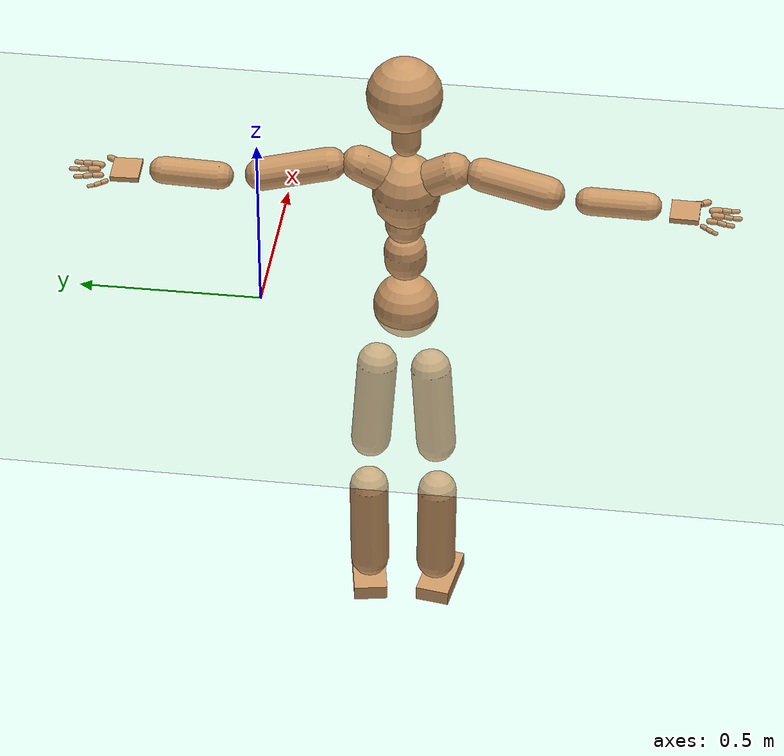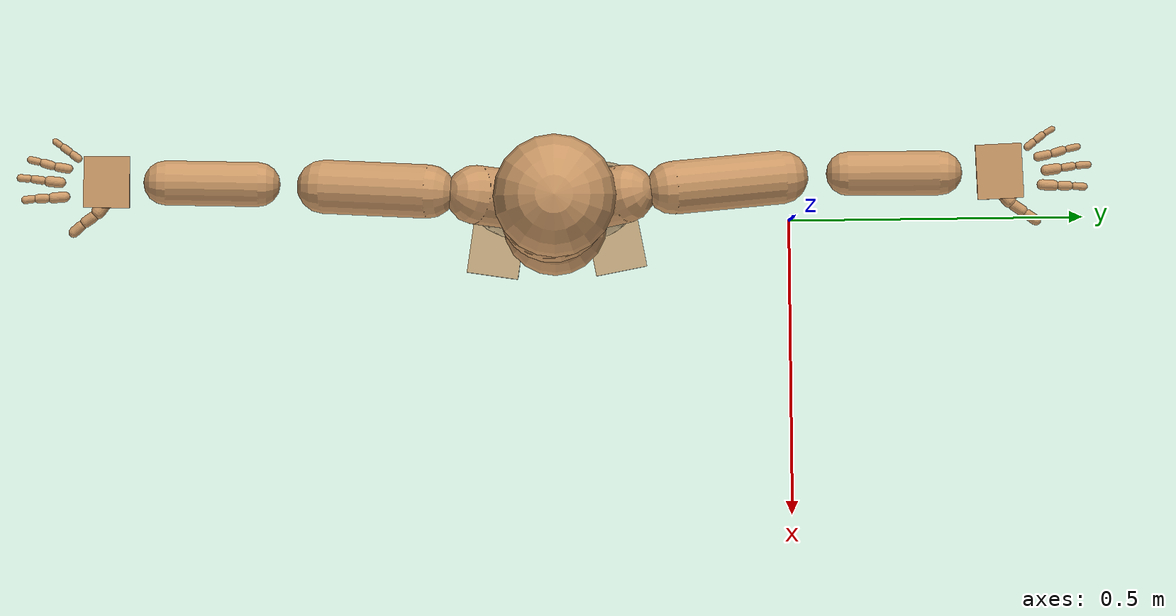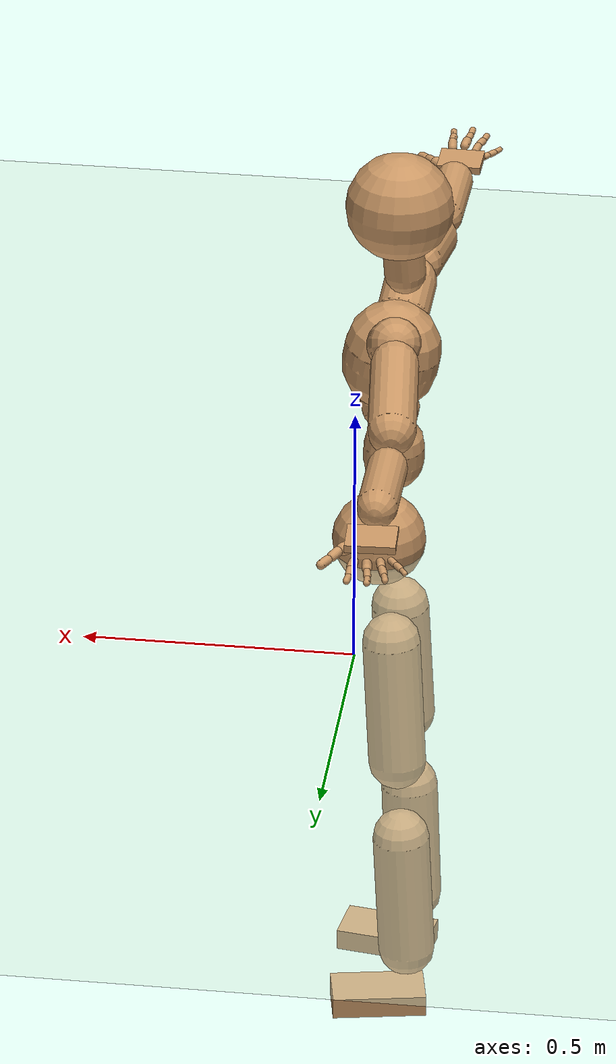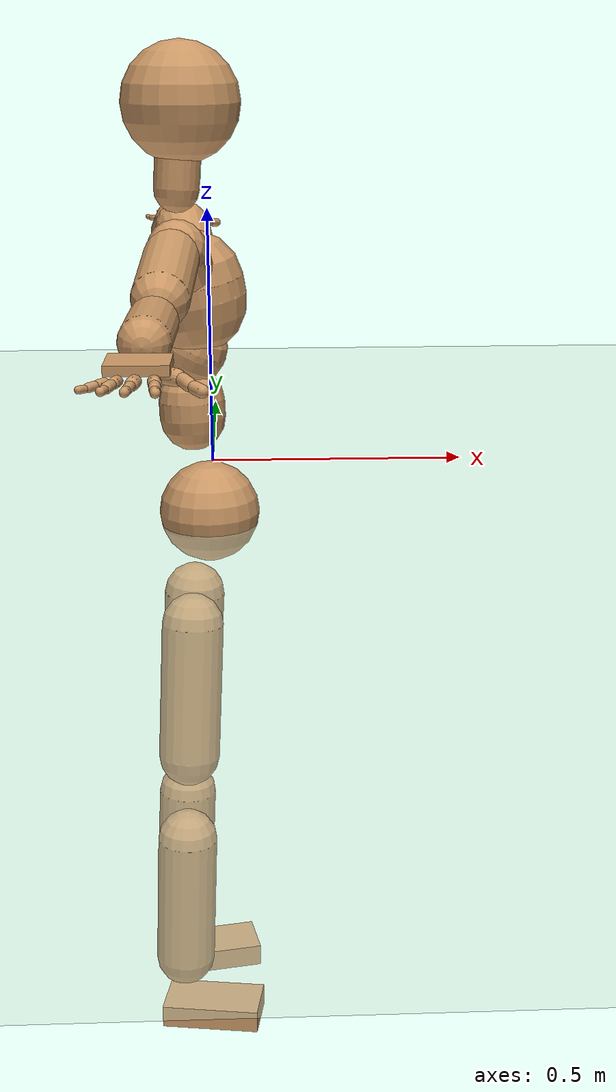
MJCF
<mujoco model="humanoid">
  <compiler coordinate="local" angle="radian"/>
  <default>
    <joint damping="0.0" armature="0.01" stiffness="0.0" limited="true"/>
    <geom conaffinity="1" condim="3" contype="7" margin="0.001" rgba="0.8 0.6 .4 1"/>
  </default>
  <asset>
    <texture type="skybox" builtin="gradient" rgb1=".4 .5 .6" rgb2="0 0 0" width="100" height="100"/>
    <texture builtin="flat" height="1278" mark="cross" markrgb="1 1 1" name="texgeom" random="0.01" rgb1="0.8 0.6 0.4" rgb2="0.8 0.6 0.4" type="cube" width="127"/>
    <texture builtin="checker" height="100" name="texplane" rgb1="0 0 0" rgb2="0.8 0.8 0.8" type="2d" width="100"/>
    <material name="MatPlane" reflectance="0.5" shininess="1" specular="1" texrepeat="60 60" texture="texplane"/>
    <material name="geom" texture="texgeom" texuniform="true"/>
  </asset>
  <worldbody>
    <light cutoff="100" diffuse="1 1 1" dir="-0 0 -1.3" directional="true" exponent="1" pos="0 0 1.3" specular=".1 .1 .1"/>
    <geom conaffinity="1" condim="3" name="floor" pos="0 0 0" rgba="0.8 0.9 0.8 1" size="100 100 .2" type="plane" material="MatPlane"/>
    <body name="Pelvis" pos="0.0004 -0.397 0.0188">
      <freejoint name="Pelvis"/>
      <geom type="sphere" contype="1" conaffinity="1" density="500" size="0.0888" pos="0.0000 0.0000 0.0000" name="Pelvis"/>
      <body name="L_Hip" pos="-0.028 0.0683 -0.0962">
        <joint name="L_Hip_x" type="hinge" pos="0 0 0" axis="1 0 0" stiffness="800" damping="80" armature="0.02" range="-180.0000 180.0000"/>
        <joint name="L_Hip_y" type="hinge" pos="0 0 0" axis="0 1 0" stiffness="800" damping="80" armature="0.02" range="-180.0000 180.0000"/>
        <joint name="L_Hip_z" type="hinge" pos="0 0 0" axis="0 0 1" stiffness="800" damping="80" armature="0.02" range="-180.0000 180.0000"/>
        <geom type="capsule" contype="1" conaffinity="1" density="500" fromto="-0.0052 0.0054 -0.0842 -0.0207 0.0216 -0.3368" size="0.0549" name="L_Hip"/>
        <body name="L_Knee" pos="-0.0258 0.027 -0.421">
          <joint name="L_Knee_x" type="hinge" pos="0 0 0" axis="1 0 0" stiffness="800" damping="80" armature="0.02" range="-180.0000 180.0000"/>
          <joint name="L_Knee_y" type="hinge" pos="0 0 0" axis="0 1 0" stiffness="800" damping="80" armature="0.02" range="-180.0000 180.0000"/>
          <joint name="L_Knee_z" type="hinge" pos="0 0 0" axis="0 0 1" stiffness="800" damping="80" armature="0.02" range="-180.0000 180.0000"/>
          <geom type="capsule" contype="1" conaffinity="1" density="500" fromto="-0.0042 -0.0012 -0.0848 -0.0170 -0.0049 -0.3393" size="0.0542" name="L_Knee"/>
          <body name="L_Ankle" pos="-0.0212 -0.0061 -0.4242">
            <joint name="L_Ankle_x" type="hinge" pos="0 0 0" axis="1 0 0" stiffness="800" damping="80" armature="0.02" range="-180.0000 180.0000"/>
            <joint name="L_Ankle_y" type="hinge" pos="0 0 0" axis="0 1 0" stiffness="800" damping="80" armature="0.02" range="-180.0000 180.0000"/>
            <joint name="L_Ankle_z" type="hinge" pos="0 0 0" axis="0 0 1" stiffness="800" damping="80" armature="0.02" range="-180.0000 180.0000"/>
            <geom type="box" contype="1" conaffinity="1" density="500" pos="0.0577 0.0107 -0.0243" size="0.0901 0.0468 0.021" quat="0.9958 0.0000 0.0000 0.0914" name="L_Ankle"/>
            <body name="L_Toe" pos="0.1154 0.0214 -0.0486">
              <joint name="L_Toe_x" type="hinge" pos="0 0 0" axis="1 0 0" stiffness="500" damping="50" armature="0.02" range="-180.0000 180.0000"/>
              <joint name="L_Toe_y" type="hinge" pos="0 0 0" axis="0 1 0" stiffness="500" damping="50" armature="0.02" range="-180.0000 180.0000"/>
              <joint name="L_Toe_z" type="hinge" pos="0 0 0" axis="0 0 1" stiffness="500" damping="50" armature="0.02" range="-180.0000 180.0000"/>
              <geom type="box" contype="1" conaffinity="1" density="500" pos="0.0000 0.0000 0.0243" size="0.0009 0.0023 0.001" quat="0.9952 0.0000 0.0000 0.0981" name="L_Toe"/>
            </body>
          </body>
        </body>
      </body>
      <body name="R_Hip" pos="-0.0293 -0.0679 -0.1036">
        <joint name="R_Hip_x" type="hinge" pos="0 0 0" axis="1 0 0" stiffness="800" damping="80" armature="0.02" range="-180.0000 180.0000"/>
        <joint name="R_Hip_y" type="hinge" pos="0 0 0" axis="0 1 0" stiffness="800" damping="80" armature="0.02" range="-180.0000 180.0000"/>
        <joint name="R_Hip_z" type="hinge" pos="0 0 0" axis="0 0 1" stiffness="800" damping="80" armature="0.02" range="-180.0000 180.0000"/>
        <geom type="capsule" contype="1" conaffinity="1" density="500" fromto="-0.0040 -0.0060 -0.0832 -0.0160 -0.0242 -0.3329" size="0.0546" name="R_Hip"/>
        <body name="R_Knee" pos="-0.02 -0.0302 -0.4161">
          <joint name="R_Knee_x" type="hinge" pos="0 0 0" axis="1 0 0" stiffness="800" damping="80" armature="0.02" range="-180.0000 180.0000"/>
          <joint name="R_Knee_y" type="hinge" pos="0 0 0" axis="0 1 0" stiffness="800" damping="80" armature="0.02" range="-180.0000 180.0000"/>
          <joint name="R_Knee_z" type="hinge" pos="0 0 0" axis="0 0 1" stiffness="800" damping="80" armature="0.02" range="-180.0000 180.0000"/>
          <geom type="capsule" contype="1" conaffinity="1" density="500" fromto="-0.0034 0.0003 -0.0831 -0.0136 0.0012 -0.3323" size="0.0542" name="R_Knee"/>
          <body name="R_Ankle" pos="-0.0171 0.0015 -0.4154">
            <joint name="R_Ankle_x" type="hinge" pos="0 0 0" axis="1 0 0" stiffness="800" damping="80" armature="0.02" range="-180.0000 180.0000"/>
            <joint name="R_Ankle_y" type="hinge" pos="0 0 0" axis="0 1 0" stiffness="800" damping="80" armature="0.02" range="-180.0000 180.0000"/>
            <joint name="R_Ankle_z" type="hinge" pos="0 0 0" axis="0 0 1" stiffness="800" damping="80" armature="0.02" range="-180.0000 180.0000"/>
            <geom type="box" contype="1" conaffinity="1" density="500" pos="0.0544 -0.0085 -0.0262" size="0.0901 0.0468 0.021" quat="0.9970 0.0000 0.0000 -0.0771" name="R_Ankle"/>
            <body name="R_Toe" pos="0.1087 -0.0169 -0.0525">
              <joint name="R_Toe_x" type="hinge" pos="0 0 0" axis="1 0 0" stiffness="500" damping="50" armature="0.02" range="-180.0000 180.0000"/>
              <joint name="R_Toe_y" type="hinge" pos="0 0 0" axis="0 1 0" stiffness="500" damping="50" armature="0.02" range="-180.0000 180.0000"/>
              <joint name="R_Toe_z" type="hinge" pos="0 0 0" axis="0 0 1" stiffness="500" damping="50" armature="0.02" range="-180.0000 180.0000"/>
              <geom type="box" contype="1" conaffinity="1" density="500" pos="0.0000 0.0000 0.0263" size="0.0009 0.0023 0.001" quat="0.9978 0.0000 0.0000 -0.0669" name="R_Toe"/>
            </body>
          </body>
        </body>
      </body>
      <body name="Torso" pos="-0.0231 -0.0045 0.1102">
        <joint name="Torso_x" type="hinge" pos="0 0 0" axis="1 0 0" stiffness="1000" damping="100" armature="0.02" range="-180.0000 180.0000"/>
        <joint name="Torso_y" type="hinge" pos="0 0 0" axis="0 1 0" stiffness="1000" damping="100" armature="0.02" range="-180.0000 180.0000"/>
        <joint name="Torso_z" type="hinge" pos="0 0 0" axis="0 0 1" stiffness="1000" damping="100" armature="0.02" range="-180.0000 180.0000"/>
        <geom type="capsule" contype="1" conaffinity="1" density="500" fromto="-0.0037 0.0038 0.0921 -0.0025 0.0026 0.0614" size="0.0573" name="Torso"/>
        <body name="Spine" pos="-0.0062 0.0064 0.1536">
          <joint name="Spine_x" type="hinge" pos="0 0 0" axis="1 0 0" stiffness="1000" damping="100" armature="0.02" range="-180.0000 180.0000"/>
          <joint name="Spine_y" type="hinge" pos="0 0 0" axis="0 1 0" stiffness="1000" damping="100" armature="0.02" range="-180.0000 180.0000"/>
          <joint name="Spine_z" type="hinge" pos="0 0 0" axis="0 0 1" stiffness="1000" damping="100" armature="0.02" range="-180.0000 180.0000"/>
          <geom type="capsule" contype="1" conaffinity="1" density="500" fromto="0.0138 -0.0020 0.0307 0.0092 -0.0013 0.0205" size="0.0536" name="Spine"/>
          <body name="Chest" pos="0.023 -0.0033 0.0512">
            <joint name="Chest_x" type="hinge" pos="0 0 0" axis="1 0 0" stiffness="1000" damping="100" armature="0.02" range="-180.0000 180.0000"/>
            <joint name="Chest_y" type="hinge" pos="0 0 0" axis="0 1 0" stiffness="1000" damping="100" armature="0.02" range="-180.0000 180.0000"/>
            <joint name="Chest_z" type="hinge" pos="0 0 0" axis="0 0 1" stiffness="1000" damping="100" armature="0.02" range="-180.0000 180.0000"/>
            <geom type="capsule" contype="1" conaffinity="1" density="500" fromto="-0.0163 -0.0013 0.0909 -0.0109 -0.0009 0.0606" size="0.0902" name="Chest"/>
            <body name="Neck" pos="-0.0391 -0.005 0.2126">
              <joint name="Neck_x" type="hinge" pos="0 0 0" axis="1 0 0" stiffness="500" damping="50" armature="0.02" range="-180.0000 180.0000"/>
              <joint name="Neck_y" type="hinge" pos="0 0 0" axis="0 1 0" stiffness="500" damping="50" armature="0.02" range="-180.0000 180.0000"/>
              <joint name="Neck_z" type="hinge" pos="0 0 0" axis="0 0 1" stiffness="500" damping="50" armature="0.02" range="-180.0000 180.0000"/>
              <geom type="capsule" contype="1" conaffinity="1" density="500" fromto="0.0026 0.0017 0.0349 0.0103 0.0068 0.1395" size="0.0387" name="Neck"/>
              <body name="Head" pos="0.0129 0.0085 0.1744">
                <joint name="Head_x" type="hinge" pos="0 0 0" axis="1 0 0" stiffness="500" damping="50" armature="0.02" range="-180.0000 180.0000"/>
                <joint name="Head_y" type="hinge" pos="0 0 0" axis="0 1 0" stiffness="500" damping="50" armature="0.02" range="-180.0000 180.0000"/>
                <joint name="Head_z" type="hinge" pos="0 0 0" axis="0 0 1" stiffness="500" damping="50" armature="0.02" range="-180.0000 180.0000"/>
                <geom type="sphere" contype="1" conaffinity="1" density="500" size="0.0998" pos="0.0000 0.0000 0.0000" name="Head"/>
              </body>
            </body>
            <body name="L_Thorax" pos="-0.0189 0.0495 0.1232">
              <joint name="L_Thorax_x" type="hinge" pos="0 0 0" axis="1 0 0" stiffness="500" damping="50" armature="0.02" range="-180.0000 180.0000"/>
              <joint name="L_Thorax_y" type="hinge" pos="0 0 0" axis="0 1 0" stiffness="500" damping="50" armature="0.02" range="-180.0000 180.0000"/>
              <joint name="L_Thorax_z" type="hinge" pos="0 0 0" axis="0 0 1" stiffness="500" damping="50" armature="0.02" range="-180.0000 180.0000"/>
              <geom type="capsule" contype="1" conaffinity="1" density="500" fromto="-0.0034 0.0176 0.0109 -0.0137 0.0702 0.0436" size="0.0481" name="L_Thorax"/>
              <body name="L_Shoulder" pos="-0.0171 0.0878 0.0546">
                <joint name="L_Shoulder_x" type="hinge" pos="0 0 0" axis="1 0 0" stiffness="500" damping="50" armature="0.02" range="-180.0000 180.0000"/>
                <joint name="L_Shoulder_y" type="hinge" pos="0 0 0" axis="0 1 0" stiffness="500" damping="50" armature="0.02" range="-180.0000 180.0000"/>
                <joint name="L_Shoulder_z" type="hinge" pos="0 0 0" axis="0 0 1" stiffness="500" damping="50" armature="0.02" range="-180.0000 180.0000"/>
                <geom type="capsule" contype="1" conaffinity="1" density="500" fromto="-0.0052 0.0597 -0.0129 -0.0210 0.2389 -0.0515" size="0.044" name="L_Shoulder"/>
                <body name="L_Elbow" pos="-0.0262 0.2987 -0.0643">
                  <joint name="L_Elbow_x" type="hinge" pos="0 0 0" axis="1 0 0" stiffness="500" damping="50" armature="0.02" range="-720.0000 720.0000"/>
                  <joint name="L_Elbow_y" type="hinge" pos="0 0 0" axis="0 1 0" stiffness="500" damping="50" armature="0.02" range="-720.0000 720.0000"/>
                  <joint name="L_Elbow_z" type="hinge" pos="0 0 0" axis="0 0 1" stiffness="500" damping="50" armature="0.02" range="-720.0000 720.0000"/>
                  <geom type="capsule" contype="1" conaffinity="1" density="500" fromto="0.0003 0.0504 0.0013 0.0011 0.2016 0.0051" size="0.0364" name="L_Elbow"/>
                  <body name="L_Wrist" pos="0.0014 0.252 0.0063">
                    <joint name="L_Wrist_x" type="hinge" pos="0 0 0" axis="1 0 0" stiffness="300" damping="30" armature="0.02" range="-180.0000 180.0000"/>
                    <joint name="L_Wrist_y" type="hinge" pos="0 0 0" axis="0 1 0" stiffness="300" damping="30" armature="0.02" range="-180.0000 180.0000"/>
                    <joint name="L_Wrist_z" type="hinge" pos="0 0 0" axis="0 0 1" stiffness="300" damping="30" armature="0.02" range="-180.0000 180.0000"/>
                    <geom type="box" contype="1" conaffinity="1" density="500" pos="-0.0018 0.0478 -0.0090" size="0.0379 0.045 0.0069" quat="0.7207 0.0000 0.0000 -0.6933" name="L_Wrist"/>
                    <body name="L_Index1" pos="0.0203 0.1116 -0.0161">
                      <joint name="L_Index1_x" type="hinge" pos="0 0 0" axis="1 0 0" stiffness="100" damping="10" armature="0.02" range="-180.0000 180.0000"/>
                      <joint name="L_Index1_y" type="hinge" pos="0 0 0" axis="0 1 0" stiffness="100" damping="10" armature="0.02" range="-180.0000 180.0000"/>
                      <joint name="L_Index1_z" type="hinge" pos="0 0 0" axis="0 0 1" stiffness="100" damping="10" armature="0.02" range="-180.0000 180.0000"/>
                      <geom type="capsule" contype="1" conaffinity="1" density="500" fromto="0.0005 0.0065 0.0006 0.0020 0.0259 0.0023" size="0.0087" name="L_Index1"/>
                      <body name="L_Index2" pos="0.0025 0.0324 0.0028">
                        <joint name="L_Index2_x" type="hinge" pos="0 0 0" axis="1 0 0" stiffness="100" damping="10" armature="0.02" range="-180.0000 180.0000"/>
                        <joint name="L_Index2_y" type="hinge" pos="0 0 0" axis="0 1 0" stiffness="100" damping="10" armature="0.02" range="-180.0000 180.0000"/>
                        <joint name="L_Index2_z" type="hinge" pos="0 0 0" axis="0 0 1" stiffness="100" damping="10" armature="0.02" range="-180.0000 180.0000"/>
                        <geom type="capsule" contype="1" conaffinity="1" density="500" fromto="0.0001 0.0046 -0.0003 0.0003 0.0183 -0.0012" size="0.0073" name="L_Index2"/>
                        <body name="L_Index3" pos="0.0004 0.0229 -0.0015">
                          <joint name="L_Index3_x" type="hinge" pos="0 0 0" axis="1 0 0" stiffness="100" damping="10" armature="0.02" range="-180.0000 180.0000"/>
                          <joint name="L_Index3_y" type="hinge" pos="0 0 0" axis="0 1 0" stiffness="100" damping="10" armature="0.02" range="-180.0000 180.0000"/>
                          <joint name="L_Index3_z" type="hinge" pos="0 0 0" axis="0 0 1" stiffness="100" damping="10" armature="0.02" range="-180.0000 180.0000"/>
                          <geom type="capsule" contype="1" conaffinity="1" density="500" fromto="0.0005 0.0050 0.0001 0.0019 0.0199 0.0004" size="0.0062" name="L_Index3"/>
                        </body>
                      </body>
                    </body>
                    <body name="L_Middle1" pos="-0.002 0.1188 -0.0136">
                      <joint name="L_Middle1_x" type="hinge" pos="0 0 0" axis="1 0 0" stiffness="100" damping="10" armature="0.02" range="-180.0000 180.0000"/>
                      <joint name="L_Middle1_y" type="hinge" pos="0 0 0" axis="0 1 0" stiffness="100" damping="10" armature="0.02" range="-180.0000 180.0000"/>
                      <joint name="L_Middle1_z" type="hinge" pos="0 0 0" axis="0 0 1" stiffness="100" damping="10" armature="0.02" range="-180.0000 180.0000"/>
                      <geom type="capsule" contype="1" conaffinity="1" density="500" fromto="-0.0008 0.0061 0.0003 -0.0031 0.0245 0.0011" size="0.0088" name="L_Middle1"/>
                      <body name="L_Middle2" pos="-0.0039 0.0306 0.0014">
                        <joint name="L_Middle2_x" type="hinge" pos="0 0 0" axis="1 0 0" stiffness="100" damping="10" armature="0.02" range="-180.0000 180.0000"/>
                        <joint name="L_Middle2_y" type="hinge" pos="0 0 0" axis="0 1 0" stiffness="100" damping="10" armature="0.02" range="-180.0000 180.0000"/>
                        <joint name="L_Middle2_z" type="hinge" pos="0 0 0" axis="0 0 1" stiffness="100" damping="10" armature="0.02" range="-180.0000 180.0000"/>
                        <geom type="capsule" contype="1" conaffinity="1" density="500" fromto="-0.0008 0.0048 -0.0001 -0.0030 0.0190 -0.0004" size="0.0067" name="L_Middle2"/>
                        <body name="L_Middle3" pos="-0.0038 0.0238 -0.0005">
                          <joint name="L_Middle3_x" type="hinge" pos="0 0 0" axis="1 0 0" stiffness="100" damping="10" armature="0.02" range="-180.0000 180.0000"/>
                          <joint name="L_Middle3_y" type="hinge" pos="0 0 0" axis="0 1 0" stiffness="100" damping="10" armature="0.02" range="-180.0000 180.0000"/>
                          <joint name="L_Middle3_z" type="hinge" pos="0 0 0" axis="0 0 1" stiffness="100" damping="10" armature="0.02" range="-180.0000 180.0000"/>
                          <geom type="capsule" contype="1" conaffinity="1" density="500" fromto="-0.0004 0.0052 0.0003 -0.0014 0.0206 0.0012" size="0.006" name="L_Middle3"/>
                        </body>
                      </body>
                    </body>
                    <body name="L_Pinky1" pos="-0.0396 0.0925 -0.0212">
                      <joint name="L_Pinky1_x" type="hinge" pos="0 0 0" axis="1 0 0" stiffness="100" damping="10" armature="0.02" range="-180.0000 180.0000"/>
                      <joint name="L_Pinky1_y" type="hinge" pos="0 0 0" axis="0 1 0" stiffness="100" damping="10" armature="0.02" range="-180.0000 180.0000"/>
                      <joint name="L_Pinky1_z" type="hinge" pos="0 0 0" axis="0 0 1" stiffness="100" damping="10" armature="0.02" range="-180.0000 180.0000"/>
                      <geom type="capsule" contype="1" conaffinity="1" density="500" fromto="-0.0023 0.0030 -0.0001 -0.0093 0.0119 -0.0002" size="0.0064" name="L_Pinky1"/>
                      <body name="L_Pinky2" pos="-0.0117 0.0149 -0.0003">
                        <joint name="L_Pinky2_x" type="hinge" pos="0 0 0" axis="1 0 0" stiffness="100" damping="10" armature="0.02" range="-180.0000 180.0000"/>
                        <joint name="L_Pinky2_y" type="hinge" pos="0 0 0" axis="0 1 0" stiffness="100" damping="10" armature="0.02" range="-180.0000 180.0000"/>
                        <joint name="L_Pinky2_z" type="hinge" pos="0 0 0" axis="0 0 1" stiffness="100" damping="10" armature="0.02" range="-180.0000 180.0000"/>
                        <geom type="capsule" contype="1" conaffinity="1" density="500" fromto="-0.0023 0.0030 -0.0002 -0.0093 0.0121 -0.0006" size="0.0062" name="L_Pinky2"/>
                        <body name="L_Pinky3" pos="-0.0116 0.0151 -0.0008">
                          <joint name="L_Pinky3_x" type="hinge" pos="0 0 0" axis="1 0 0" stiffness="100" damping="10" armature="0.02" range="-180.0000 180.0000"/>
                          <joint name="L_Pinky3_y" type="hinge" pos="0 0 0" axis="0 1 0" stiffness="100" damping="10" armature="0.02" range="-180.0000 180.0000"/>
                          <joint name="L_Pinky3_z" type="hinge" pos="0 0 0" axis="0 0 1" stiffness="100" damping="10" armature="0.02" range="-180.0000 180.0000"/>
                          <geom type="capsule" contype="1" conaffinity="1" density="500" fromto="-0.0019 0.0034 0.0002 -0.0077 0.0137 0.0010" size="0.0049" name="L_Pinky3"/>
                        </body>
                      </body>
                    </body>
                    <body name="L_Ring1" pos="-0.0241 0.1062 -0.0161">
                      <joint name="L_Ring1_x" type="hinge" pos="0 0 0" axis="1 0 0" stiffness="100" damping="10" armature="0.02" range="-180.0000 180.0000"/>
                      <joint name="L_Ring1_y" type="hinge" pos="0 0 0" axis="0 1 0" stiffness="100" damping="10" armature="0.02" range="-180.0000 180.0000"/>
                      <joint name="L_Ring1_z" type="hinge" pos="0 0 0" axis="0 0 1" stiffness="100" damping="10" armature="0.02" range="-180.0000 180.0000"/>
                      <geom type="capsule" contype="1" conaffinity="1" density="500" fromto="-0.0011 0.0056 0.0004 -0.0043 0.0222 0.0015" size="0.0076" name="L_Ring1"/>
                      <body name="L_Ring2" pos="-0.0054 0.0278 0.0019">
                        <joint name="L_Ring2_x" type="hinge" pos="0 0 0" axis="1 0 0" stiffness="100" damping="10" armature="0.02" range="-180.0000 180.0000"/>
                        <joint name="L_Ring2_y" type="hinge" pos="0 0 0" axis="0 1 0" stiffness="100" damping="10" armature="0.02" range="-180.0000 180.0000"/>
                        <joint name="L_Ring2_z" type="hinge" pos="0 0 0" axis="0 0 1" stiffness="100" damping="10" armature="0.02" range="-180.0000 180.0000"/>
                        <geom type="capsule" contype="1" conaffinity="1" density="500" fromto="-0.0014 0.0046 -0.0002 -0.0057 0.0182 -0.0007" size="0.0072" name="L_Ring2"/>
                        <body name="L_Ring3" pos="-0.0072 0.0228 -0.0009">
                          <joint name="L_Ring3_x" type="hinge" pos="0 0 0" axis="1 0 0" stiffness="100" damping="10" armature="0.02" range="-180.0000 180.0000"/>
                          <joint name="L_Ring3_y" type="hinge" pos="0 0 0" axis="0 1 0" stiffness="100" damping="10" armature="0.02" range="-180.0000 180.0000"/>
                          <joint name="L_Ring3_z" type="hinge" pos="0 0 0" axis="0 0 1" stiffness="100" damping="10" armature="0.02" range="-180.0000 180.0000"/>
                          <geom type="capsule" contype="1" conaffinity="1" density="500" fromto="-0.0010 0.0050 0.0002 -0.0041 0.0198 0.0009" size="0.0057" name="L_Ring3"/>
                        </body>
                      </body>
                    </body>
                    <body name="L_Thumb1" pos="0.0269 0.0488 -0.0228">
                      <joint name="L_Thumb1_x" type="hinge" pos="0 0 0" axis="1 0 0" stiffness="100" damping="10" armature="0.02" range="-180.0000 180.0000"/>
                      <joint name="L_Thumb1_y" type="hinge" pos="0 0 0" axis="0 1 0" stiffness="100" damping="10" armature="0.02" range="-180.0000 180.0000"/>
                      <joint name="L_Thumb1_z" type="hinge" pos="0 0 0" axis="0 0 1" stiffness="100" damping="10" armature="0.02" range="-180.0000 180.0000"/>
                      <geom type="capsule" contype="1" conaffinity="1" density="500" fromto="0.0048 0.0038 0.0000 0.0192 0.0150 0.0000" size="0.0117" name="L_Thumb1"/>
                      <body name="L_Thumb2" pos="0.024 0.0188 0">
                        <joint name="L_Thumb2_x" type="hinge" pos="0 0 0" axis="1 0 0" stiffness="100" damping="10" armature="0.02" range="-180.0000 180.0000"/>
                        <joint name="L_Thumb2_y" type="hinge" pos="0 0 0" axis="0 1 0" stiffness="100" damping="10" armature="0.02" range="-180.0000 180.0000"/>
                        <joint name="L_Thumb2_z" type="hinge" pos="0 0 0" axis="0 0 1" stiffness="100" damping="10" armature="0.02" range="-180.0000 180.0000"/>
                        <geom type="capsule" contype="1" conaffinity="1" density="500" fromto="0.0030 0.0043 -0.0011 0.0118 0.0174 -0.0046" size="0.0092" name="L_Thumb2"/>
                        <body name="L_Thumb3" pos="0.0148 0.0217 -0.0057">
                          <joint name="L_Thumb3_x" type="hinge" pos="0 0 0" axis="1 0 0" stiffness="100" damping="10" armature="0.02" range="-180.0000 180.0000"/>
                          <joint name="L_Thumb3_y" type="hinge" pos="0 0 0" axis="0 1 0" stiffness="100" damping="10" armature="0.02" range="-180.0000 180.0000"/>
                          <joint name="L_Thumb3_z" type="hinge" pos="0 0 0" axis="0 0 1" stiffness="100" damping="10" armature="0.02" range="-180.0000 180.0000"/>
                          <geom type="capsule" contype="1" conaffinity="1" density="500" fromto="0.0034 0.0047 -0.0007 0.0134 0.0190 -0.0030" size="0.0085" name="L_Thumb3"/>
                        </body>
                      </body>
                    </body>
                  </body>
                </body>
              </body>
            </body>
            <body name="R_Thorax" pos="-0.0237 -0.051 0.1189">
              <joint name="R_Thorax_x" type="hinge" pos="0 0 0" axis="1 0 0" stiffness="500" damping="50" armature="0.02" range="-180.0000 180.0000"/>
              <joint name="R_Thorax_y" type="hinge" pos="0 0 0" axis="0 1 0" stiffness="500" damping="50" armature="0.02" range="-180.0000 180.0000"/>
              <joint name="R_Thorax_z" type="hinge" pos="0 0 0" axis="0 0 1" stiffness="500" damping="50" armature="0.02" range="-180.0000 180.0000"/>
              <geom type="capsule" contype="1" conaffinity="1" density="500" fromto="-0.0025 -0.0189 0.0116 -0.0101 -0.0757 0.0462" size="0.049" name="R_Thorax"/>
              <body name="R_Shoulder" pos="-0.0126 -0.0946 0.0578">
                <joint name="R_Shoulder_x" type="hinge" pos="0 0 0" axis="1 0 0" stiffness="500" damping="50" armature="0.02" range="-180.0000 180.0000"/>
                <joint name="R_Shoulder_y" type="hinge" pos="0 0 0" axis="0 1 0" stiffness="500" damping="50" armature="0.02" range="-180.0000 180.0000"/>
                <joint name="R_Shoulder_z" type="hinge" pos="0 0 0" axis="0 0 1" stiffness="500" damping="50" armature="0.02" range="-180.0000 180.0000"/>
                <geom type="capsule" contype="1" conaffinity="1" density="500" fromto="-0.0037 -0.0578 -0.0119 -0.0146 -0.2310 -0.0476" size="0.0443" name="R_Shoulder"/>
                <body name="R_Elbow" pos="-0.0183 -0.2888 -0.0595">
                  <joint name="R_Elbow_x" type="hinge" pos="0 0 0" axis="1 0 0" stiffness="500" damping="50" armature="0.02" range="-720.0000 720.0000"/>
                  <joint name="R_Elbow_y" type="hinge" pos="0 0 0" axis="0 1 0" stiffness="500" damping="50" armature="0.02" range="-720.0000 720.0000"/>
                  <joint name="R_Elbow_z" type="hinge" pos="0 0 0" axis="0 0 1" stiffness="500" damping="50" armature="0.02" range="-720.0000 720.0000"/>
                  <geom type="capsule" contype="1" conaffinity="1" density="500" fromto="-0.0015 -0.0506 0.0004 -0.0061 -0.2025 0.0015" size="0.0367" name="R_Elbow"/>
                  <body name="R_Wrist" pos="-0.0076 -0.2531 0.0019">
                    <joint name="R_Wrist_x" type="hinge" pos="0 0 0" axis="1 0 0" stiffness="300" damping="30" armature="0.02" range="-180.0000 180.0000"/>
                    <joint name="R_Wrist_y" type="hinge" pos="0 0 0" axis="0 1 0" stiffness="300" damping="30" armature="0.02" range="-180.0000 180.0000"/>
                    <joint name="R_Wrist_z" type="hinge" pos="0 0 0" axis="0 0 1" stiffness="300" damping="30" armature="0.02" range="-180.0000 180.0000"/>
                    <geom type="box" contype="1" conaffinity="1" density="500" pos="-0.0011 -0.0471 -0.0087" size="0.0379 0.0423 0.0071" quat="0.7155 0.0000 0.0000 0.6986" name="R_Wrist"/>
                    <body name="R_Index1" pos="0.0217 -0.1102 -0.0154">
                      <joint name="R_Index1_x" type="hinge" pos="0 0 0" axis="1 0 0" stiffness="100" damping="10" armature="0.02" range="-180.0000 180.0000"/>
                      <joint name="R_Index1_y" type="hinge" pos="0 0 0" axis="0 1 0" stiffness="100" damping="10" armature="0.02" range="-180.0000 180.0000"/>
                      <joint name="R_Index1_z" type="hinge" pos="0 0 0" axis="0 0 1" stiffness="100" damping="10" armature="0.02" range="-180.0000 180.0000"/>
                      <geom type="capsule" contype="1" conaffinity="1" density="500" fromto="0.0005 -0.0065 0.0006 0.0020 -0.0259 0.0022" size="0.0087" name="R_Index1"/>
                      <body name="R_Index2" pos="0.0025 -0.0324 0.0028">
                        <joint name="R_Index2_x" type="hinge" pos="0 0 0" axis="1 0 0" stiffness="100" damping="10" armature="0.02" range="-180.0000 180.0000"/>
                        <joint name="R_Index2_y" type="hinge" pos="0 0 0" axis="0 1 0" stiffness="100" damping="10" armature="0.02" range="-180.0000 180.0000"/>
                        <joint name="R_Index2_z" type="hinge" pos="0 0 0" axis="0 0 1" stiffness="100" damping="10" armature="0.02" range="-180.0000 180.0000"/>
                        <geom type="capsule" contype="1" conaffinity="1" density="500" fromto="0.0001 -0.0046 -0.0003 0.0003 -0.0183 -0.0012" size="0.0073" name="R_Index2"/>
                        <body name="R_Index3" pos="0.0004 -0.0229 -0.0015">
                          <joint name="R_Index3_x" type="hinge" pos="0 0 0" axis="1 0 0" stiffness="100" damping="10" armature="0.02" range="-180.0000 180.0000"/>
                          <joint name="R_Index3_y" type="hinge" pos="0 0 0" axis="0 1 0" stiffness="100" damping="10" armature="0.02" range="-180.0000 180.0000"/>
                          <joint name="R_Index3_z" type="hinge" pos="0 0 0" axis="0 0 1" stiffness="100" damping="10" armature="0.02" range="-180.0000 180.0000"/>
                          <geom type="capsule" contype="1" conaffinity="1" density="500" fromto="0.0005 -0.0042 0.0001 0.0019 -0.0167 0.0004" size="0.0065" name="R_Index3"/>
                        </body>
                      </body>
                    </body>
                    <body name="R_Middle1" pos="-0.0005 -0.1173 -0.013">
                      <joint name="R_Middle1_x" type="hinge" pos="0 0 0" axis="1 0 0" stiffness="100" damping="10" armature="0.02" range="-180.0000 180.0000"/>
                      <joint name="R_Middle1_y" type="hinge" pos="0 0 0" axis="0 1 0" stiffness="100" damping="10" armature="0.02" range="-180.0000 180.0000"/>
                      <joint name="R_Middle1_z" type="hinge" pos="0 0 0" axis="0 0 1" stiffness="100" damping="10" armature="0.02" range="-180.0000 180.0000"/>
                      <geom type="capsule" contype="1" conaffinity="1" density="500" fromto="-0.0008 -0.0061 0.0003 -0.0031 -0.0245 0.0011" size="0.0088" name="R_Middle1"/>
                      <body name="R_Middle2" pos="-0.0039 -0.0306 0.0014">
                        <joint name="R_Middle2_x" type="hinge" pos="0 0 0" axis="1 0 0" stiffness="100" damping="10" armature="0.02" range="-180.0000 180.0000"/>
                        <joint name="R_Middle2_y" type="hinge" pos="0 0 0" axis="0 1 0" stiffness="100" damping="10" armature="0.02" range="-180.0000 180.0000"/>
                        <joint name="R_Middle2_z" type="hinge" pos="0 0 0" axis="0 0 1" stiffness="100" damping="10" armature="0.02" range="-180.0000 180.0000"/>
                        <geom type="capsule" contype="1" conaffinity="1" density="500" fromto="-0.0008 -0.0048 -0.0001 -0.0030 -0.0190 -0.0004" size="0.0067" name="R_Middle2"/>
                        <body name="R_Middle3" pos="-0.0038 -0.0238 -0.0005">
                          <joint name="R_Middle3_x" type="hinge" pos="0 0 0" axis="1 0 0" stiffness="100" damping="10" armature="0.02" range="-180.0000 180.0000"/>
                          <joint name="R_Middle3_y" type="hinge" pos="0 0 0" axis="0 1 0" stiffness="100" damping="10" armature="0.02" range="-180.0000 180.0000"/>
                          <joint name="R_Middle3_z" type="hinge" pos="0 0 0" axis="0 0 1" stiffness="100" damping="10" armature="0.02" range="-180.0000 180.0000"/>
                          <geom type="capsule" contype="1" conaffinity="1" density="500" fromto="-0.0004 -0.0044 0.0003 -0.0014 -0.0174 0.0012" size="0.0063" name="R_Middle3"/>
                        </body>
                      </body>
                    </body>
                    <body name="R_Pinky1" pos="-0.0382 -0.0911 -0.0205">
                      <joint name="R_Pinky1_x" type="hinge" pos="0 0 0" axis="1 0 0" stiffness="100" damping="10" armature="0.02" range="-180.0000 180.0000"/>
                      <joint name="R_Pinky1_y" type="hinge" pos="0 0 0" axis="0 1 0" stiffness="100" damping="10" armature="0.02" range="-180.0000 180.0000"/>
                      <joint name="R_Pinky1_z" type="hinge" pos="0 0 0" axis="0 0 1" stiffness="100" damping="10" armature="0.02" range="-180.0000 180.0000"/>
                      <geom type="capsule" contype="1" conaffinity="1" density="500" fromto="-0.0023 -0.0030 -0.0001 -0.0093 -0.0119 -0.0002" size="0.0064" name="R_Pinky1"/>
                      <body name="R_Pinky2" pos="-0.0117 -0.0149 -0.0003">
                        <joint name="R_Pinky2_x" type="hinge" pos="0 0 0" axis="1 0 0" stiffness="100" damping="10" armature="0.02" range="-180.0000 180.0000"/>
                        <joint name="R_Pinky2_y" type="hinge" pos="0 0 0" axis="0 1 0" stiffness="100" damping="10" armature="0.02" range="-180.0000 180.0000"/>
                        <joint name="R_Pinky2_z" type="hinge" pos="0 0 0" axis="0 0 1" stiffness="100" damping="10" armature="0.02" range="-180.0000 180.0000"/>
                        <geom type="capsule" contype="1" conaffinity="1" density="500" fromto="-0.0023 -0.0030 -0.0002 -0.0093 -0.0121 -0.0006" size="0.0062" name="R_Pinky2"/>
                        <body name="R_Pinky3" pos="-0.0116 -0.0151 -0.0008">
                          <joint name="R_Pinky3_x" type="hinge" pos="0 0 0" axis="1 0 0" stiffness="100" damping="10" armature="0.02" range="-180.0000 180.0000"/>
                          <joint name="R_Pinky3_y" type="hinge" pos="0 0 0" axis="0 1 0" stiffness="100" damping="10" armature="0.02" range="-180.0000 180.0000"/>
                          <joint name="R_Pinky3_z" type="hinge" pos="0 0 0" axis="0 0 1" stiffness="100" damping="10" armature="0.02" range="-180.0000 180.0000"/>
                          <geom type="capsule" contype="1" conaffinity="1" density="500" fromto="-0.0019 -0.0026 0.0002 -0.0077 -0.0105 0.0010" size="0.0052" name="R_Pinky3"/>
                        </body>
                      </body>
                    </body>
                    <body name="R_Ring1" pos="-0.0227 -0.1048 -0.0155">
                      <joint name="R_Ring1_x" type="hinge" pos="0 0 0" axis="1 0 0" stiffness="100" damping="10" armature="0.02" range="-180.0000 180.0000"/>
                      <joint name="R_Ring1_y" type="hinge" pos="0 0 0" axis="0 1 0" stiffness="100" damping="10" armature="0.02" range="-180.0000 180.0000"/>
                      <joint name="R_Ring1_z" type="hinge" pos="0 0 0" axis="0 0 1" stiffness="100" damping="10" armature="0.02" range="-180.0000 180.0000"/>
                      <geom type="capsule" contype="1" conaffinity="1" density="500" fromto="-0.0011 -0.0056 0.0004 -0.0043 -0.0222 0.0015" size="0.0076" name="R_Ring1"/>
                      <body name="R_Ring2" pos="-0.0054 -0.0278 0.0019">
                        <joint name="R_Ring2_x" type="hinge" pos="0 0 0" axis="1 0 0" stiffness="100" damping="10" armature="0.02" range="-180.0000 180.0000"/>
                        <joint name="R_Ring2_y" type="hinge" pos="0 0 0" axis="0 1 0" stiffness="100" damping="10" armature="0.02" range="-180.0000 180.0000"/>
                        <joint name="R_Ring2_z" type="hinge" pos="0 0 0" axis="0 0 1" stiffness="100" damping="10" armature="0.02" range="-180.0000 180.0000"/>
                        <geom type="capsule" contype="1" conaffinity="1" density="500" fromto="-0.0014 -0.0046 -0.0002 -0.0057 -0.0182 -0.0007" size="0.0072" name="R_Ring2"/>
                        <body name="R_Ring3" pos="-0.0072 -0.0228 -0.0009">
                          <joint name="R_Ring3_x" type="hinge" pos="0 0 0" axis="1 0 0" stiffness="100" damping="10" armature="0.02" range="-180.0000 180.0000"/>
                          <joint name="R_Ring3_y" type="hinge" pos="0 0 0" axis="0 1 0" stiffness="100" damping="10" armature="0.02" range="-180.0000 180.0000"/>
                          <joint name="R_Ring3_z" type="hinge" pos="0 0 0" axis="0 0 1" stiffness="100" damping="10" armature="0.02" range="-180.0000 180.0000"/>
                          <geom type="capsule" contype="1" conaffinity="1" density="500" fromto="-0.0010 -0.0042 0.0002 -0.0041 -0.0166 0.0009" size="0.006" name="R_Ring3"/>
                        </body>
                      </body>
                    </body>
                    <body name="R_Thumb1" pos="0.0284 -0.0473 -0.0221">
                      <joint name="R_Thumb1_x" type="hinge" pos="0 0 0" axis="1 0 0" stiffness="100" damping="10" armature="0.02" range="-180.0000 180.0000"/>
                      <joint name="R_Thumb1_y" type="hinge" pos="0 0 0" axis="0 1 0" stiffness="100" damping="10" armature="0.02" range="-180.0000 180.0000"/>
                      <joint name="R_Thumb1_z" type="hinge" pos="0 0 0" axis="0 0 1" stiffness="100" damping="10" armature="0.02" range="-180.0000 180.0000"/>
                      <geom type="capsule" contype="1" conaffinity="1" density="500" fromto="0.0048 -0.0038 0.0000 0.0192 -0.0150 0.0000" size="0.0117" name="R_Thumb1"/>
                      <body name="R_Thumb2" pos="0.024 -0.0188 0">
                        <joint name="R_Thumb2_x" type="hinge" pos="0 0 0" axis="1 0 0" stiffness="100" damping="10" armature="0.02" range="-180.0000 180.0000"/>
                        <joint name="R_Thumb2_y" type="hinge" pos="0 0 0" axis="0 1 0" stiffness="100" damping="10" armature="0.02" range="-180.0000 180.0000"/>
                        <joint name="R_Thumb2_z" type="hinge" pos="0 0 0" axis="0 0 1" stiffness="100" damping="10" armature="0.02" range="-180.0000 180.0000"/>
                        <geom type="capsule" contype="1" conaffinity="1" density="500" fromto="0.0030 -0.0043 -0.0011 0.0118 -0.0174 -0.0046" size="0.0092" name="R_Thumb2"/>
                        <body name="R_Thumb3" pos="0.0148 -0.0217 -0.0057">
                          <joint name="R_Thumb3_x" type="hinge" pos="0 0 0" axis="1 0 0" stiffness="100" damping="10" armature="0.02" range="-180.0000 180.0000"/>
                          <joint name="R_Thumb3_y" type="hinge" pos="0 0 0" axis="0 1 0" stiffness="100" damping="10" armature="0.02" range="-180.0000 180.0000"/>
                          <joint name="R_Thumb3_z" type="hinge" pos="0 0 0" axis="0 0 1" stiffness="100" damping="10" armature="0.02" range="-180.0000 180.0000"/>
                          <geom type="capsule" contype="1" conaffinity="1" density="500" fromto="0.0034 -0.0039 -0.0007 0.0134 -0.0158 -0.0030" size="0.0087" name="R_Thumb3"/>
                        </body>
                      </body>
                    </body>
                  </body>
                </body>
              </body>
            </body>
          </body>
        </body>
      </body>
    </body>
  </worldbody>
  <actuator>
    <motor name="L_Hip_x" joint="L_Hip_x" gear="500"/>
    <motor name="L_Hip_y" joint="L_Hip_y" gear="500"/>
    <motor name="L_Hip_z" joint="L_Hip_z" gear="500"/>
    <motor name="L_Knee_x" joint="L_Knee_x" gear="500"/>
    <motor name="L_Knee_y" joint="L_Knee_y" gear="500"/>
    <motor name="L_Knee_z" joint="L_Knee_z" gear="500"/>
    <motor name="L_Ankle_x" joint="L_Ankle_x" gear="500"/>
    <motor name="L_Ankle_y" joint="L_Ankle_y" gear="500"/>
    <motor name="L_Ankle_z" joint="L_Ankle_z" gear="500"/>
    <motor name="L_Toe_x" joint="L_Toe_x" gear="500"/>
    <motor name="L_Toe_y" joint="L_Toe_y" gear="500"/>
    <motor name="L_Toe_z" joint="L_Toe_z" gear="500"/>
    <motor name="R_Hip_x" joint="R_Hip_x" gear="500"/>
    <motor name="R_Hip_y" joint="R_Hip_y" gear="500"/>
    <motor name="R_Hip_z" joint="R_Hip_z" gear="500"/>
    <motor name="R_Knee_x" joint="R_Knee_x" gear="500"/>
    <motor name="R_Knee_y" joint="R_Knee_y" gear="500"/>
    <motor name="R_Knee_z" joint="R_Knee_z" gear="500"/>
    <motor name="R_Ankle_x" joint="R_Ankle_x" gear="500"/>
    <motor name="R_Ankle_y" joint="R_Ankle_y" gear="500"/>
    <motor name="R_Ankle_z" joint="R_Ankle_z" gear="500"/>
    <motor name="R_Toe_x" joint="R_Toe_x" gear="500"/>
    <motor name="R_Toe_y" joint="R_Toe_y" gear="500"/>
    <motor name="R_Toe_z" joint="R_Toe_z" gear="500"/>
    <motor name="Torso_x" joint="Torso_x" gear="500"/>
    <motor name="Torso_y" joint="Torso_y" gear="500"/>
    <motor name="Torso_z" joint="Torso_z" gear="500"/>
    <motor name="Spine_x" joint="Spine_x" gear="500"/>
    <motor name="Spine_y" joint="Spine_y" gear="500"/>
    <motor name="Spine_z" joint="Spine_z" gear="500"/>
    <motor name="Chest_x" joint="Chest_x" gear="500"/>
    <motor name="Chest_y" joint="Chest_y" gear="500"/>
    <motor name="Chest_z" joint="Chest_z" gear="500"/>
    <motor name="Neck_x" joint="Neck_x" gear="500"/>
    <motor name="Neck_y" joint="Neck_y" gear="500"/>
    <motor name="Neck_z" joint="Neck_z" gear="500"/>
    <motor name="Head_x" joint="Head_x" gear="500"/>
    <motor name="Head_y" joint="Head_y" gear="500"/>
    <motor name="Head_z" joint="Head_z" gear="500"/>
    <motor name="L_Thorax_x" joint="L_Thorax_x" gear="500"/>
    <motor name="L_Thorax_y" joint="L_Thorax_y" gear="500"/>
    <motor name="L_Thorax_z" joint="L_Thorax_z" gear="500"/>
    <motor name="L_Shoulder_x" joint="L_Shoulder_x" gear="500"/>
    <motor name="L_Shoulder_y" joint="L_Shoulder_y" gear="500"/>
    <motor name="L_Shoulder_z" joint="L_Shoulder_z" gear="500"/>
    <motor name="L_Elbow_x" joint="L_Elbow_x" gear="500"/>
    <motor name="L_Elbow_y" joint="L_Elbow_y" gear="500"/>
    <motor name="L_Elbow_z" joint="L_Elbow_z" gear="500"/>
    <motor name="L_Wrist_x" joint="L_Wrist_x" gear="500"/>
    <motor name="L_Wrist_y" joint="L_Wrist_y" gear="500"/>
    <motor name="L_Wrist_z" joint="L_Wrist_z" gear="500"/>
    <motor name="L_Index1_x" joint="L_Index1_x" gear="500"/>
    <motor name="L_Index1_y" joint="L_Index1_y" gear="500"/>
    <motor name="L_Index1_z" joint="L_Index1_z" gear="500"/>
    <motor name="L_Index2_x" joint="L_Index2_x" gear="500"/>
    <motor name="L_Index2_y" joint="L_Index2_y" gear="500"/>
    <motor name="L_Index2_z" joint="L_Index2_z" gear="500"/>
    <motor name="L_Index3_x" joint="L_Index3_x" gear="500"/>
    <motor name="L_Index3_y" joint="L_Index3_y" gear="500"/>
    <motor name="L_Index3_z" joint="L_Index3_z" gear="500"/>
    <motor name="L_Middle1_x" joint="L_Middle1_x" gear="500"/>
    <motor name="L_Middle1_y" joint="L_Middle1_y" gear="500"/>
    <motor name="L_Middle1_z" joint="L_Middle1_z" gear="500"/>
    <motor name="L_Middle2_x" joint="L_Middle2_x" gear="500"/>
    <motor name="L_Middle2_y" joint="L_Middle2_y" gear="500"/>
    <motor name="L_Middle2_z" joint="L_Middle2_z" gear="500"/>
    <motor name="L_Middle3_x" joint="L_Middle3_x" gear="500"/>
    <motor name="L_Middle3_y" joint="L_Middle3_y" gear="500"/>
    <motor name="L_Middle3_z" joint="L_Middle3_z" gear="500"/>
    <motor name="L_Pinky1_x" joint="L_Pinky1_x" gear="500"/>
    <motor name="L_Pinky1_y" joint="L_Pinky1_y" gear="500"/>
    <motor name="L_Pinky1_z" joint="L_Pinky1_z" gear="500"/>
    <motor name="L_Pinky2_x" joint="L_Pinky2_x" gear="500"/>
    <motor name="L_Pinky2_y" joint="L_Pinky2_y" gear="500"/>
    <motor name="L_Pinky2_z" joint="L_Pinky2_z" gear="500"/>
    <motor name="L_Pinky3_x" joint="L_Pinky3_x" gear="500"/>
    <motor name="L_Pinky3_y" joint="L_Pinky3_y" gear="500"/>
    <motor name="L_Pinky3_z" joint="L_Pinky3_z" gear="500"/>
    <motor name="L_Ring1_x" joint="L_Ring1_x" gear="500"/>
    <motor name="L_Ring1_y" joint="L_Ring1_y" gear="500"/>
    <motor name="L_Ring1_z" joint="L_Ring1_z" gear="500"/>
    <motor name="L_Ring2_x" joint="L_Ring2_x" gear="500"/>
    <motor name="L_Ring2_y" joint="L_Ring2_y" gear="500"/>
    <motor name="L_Ring2_z" joint="L_Ring2_z" gear="500"/>
    <motor name="L_Ring3_x" joint="L_Ring3_x" gear="500"/>
    <motor name="L_Ring3_y" joint="L_Ring3_y" gear="500"/>
    <motor name="L_Ring3_z" joint="L_Ring3_z" gear="500"/>
    <motor name="L_Thumb1_x" joint="L_Thumb1_x" gear="500"/>
    <motor name="L_Thumb1_y" joint="L_Thumb1_y" gear="500"/>
    <motor name="L_Thumb1_z" joint="L_Thumb1_z" gear="500"/>
    <motor name="L_Thumb2_x" joint="L_Thumb2_x" gear="500"/>
    <motor name="L_Thumb2_y" joint="L_Thumb2_y" gear="500"/>
    <motor name="L_Thumb2_z" joint="L_Thumb2_z" gear="500"/>
    <motor name="L_Thumb3_x" joint="L_Thumb3_x" gear="500"/>
    <motor name="L_Thumb3_y" joint="L_Thumb3_y" gear="500"/>
    <motor name="L_Thumb3_z" joint="L_Thumb3_z" gear="500"/>
    <motor name="R_Thorax_x" joint="R_Thorax_x" gear="500"/>
    <motor name="R_Thorax_y" joint="R_Thorax_y" gear="500"/>
    <motor name="R_Thorax_z" joint="R_Thorax_z" gear="500"/>
    <motor name="R_Shoulder_x" joint="R_Shoulder_x" gear="500"/>
    <motor name="R_Shoulder_y" joint="R_Shoulder_y" gear="500"/>
    <motor name="R_Shoulder_z" joint="R_Shoulder_z" gear="500"/>
    <motor name="R_Elbow_x" joint="R_Elbow_x" gear="500"/>
    <motor name="R_Elbow_y" joint="R_Elbow_y" gear="500"/>
    <motor name="R_Elbow_z" joint="R_Elbow_z" gear="500"/>
    <motor name="R_Wrist_x" joint="R_Wrist_x" gear="500"/>
    <motor name="R_Wrist_y" joint="R_Wrist_y" gear="500"/>
    <motor name="R_Wrist_z" joint="R_Wrist_z" gear="500"/>
    <motor name="R_Index1_x" joint="R_Index1_x" gear="500"/>
    <motor name="R_Index1_y" joint="R_Index1_y" gear="500"/>
    <motor name="R_Index1_z" joint="R_Index1_z" gear="500"/>
    <motor name="R_Index2_x" joint="R_Index2_x" gear="500"/>
    <motor name="R_Index2_y" joint="R_Index2_y" gear="500"/>
    <motor name="R_Index2_z" joint="R_Index2_z" gear="500"/>
    <motor name="R_Index3_x" joint="R_Index3_x" gear="500"/>
    <motor name="R_Index3_y" joint="R_Index3_y" gear="500"/>
    <motor name="R_Index3_z" joint="R_Index3_z" gear="500"/>
    <motor name="R_Middle1_x" joint="R_Middle1_x" gear="500"/>
    <motor name="R_Middle1_y" joint="R_Middle1_y" gear="500"/>
    <motor name="R_Middle1_z" joint="R_Middle1_z" gear="500"/>
    <motor name="R_Middle2_x" joint="R_Middle2_x" gear="500"/>
    <motor name="R_Middle2_y" joint="R_Middle2_y" gear="500"/>
    <motor name="R_Middle2_z" joint="R_Middle2_z" gear="500"/>
    <motor name="R_Middle3_x" joint="R_Middle3_x" gear="500"/>
    <motor name="R_Middle3_y" joint="R_Middle3_y" gear="500"/>
    <motor name="R_Middle3_z" joint="R_Middle3_z" gear="500"/>
    <motor name="R_Pinky1_x" joint="R_Pinky1_x" gear="500"/>
    <motor name="R_Pinky1_y" joint="R_Pinky1_y" gear="500"/>
    <motor name="R_Pinky1_z" joint="R_Pinky1_z" gear="500"/>
    <motor name="R_Pinky2_x" joint="R_Pinky2_x" gear="500"/>
    <motor name="R_Pinky2_y" joint="R_Pinky2_y" gear="500"/>
    <motor name="R_Pinky2_z" joint="R_Pinky2_z" gear="500"/>
    <motor name="R_Pinky3_x" joint="R_Pinky3_x" gear="500"/>
    <motor name="R_Pinky3_y" joint="R_Pinky3_y" gear="500"/>
    <motor name="R_Pinky3_z" joint="R_Pinky3_z" gear="500"/>
    <motor name="R_Ring1_x" joint="R_Ring1_x" gear="500"/>
    <motor name="R_Ring1_y" joint="R_Ring1_y" gear="500"/>
    <motor name="R_Ring1_z" joint="R_Ring1_z" gear="500"/>
    <motor name="R_Ring2_x" joint="R_Ring2_x" gear="500"/>
    <motor name="R_Ring2_y" joint="R_Ring2_y" gear="500"/>
    <motor name="R_Ring2_z" joint="R_Ring2_z" gear="500"/>
    <motor name="R_Ring3_x" joint="R_Ring3_x" gear="500"/>
    <motor name="R_Ring3_y" joint="R_Ring3_y" gear="500"/>
    <motor name="R_Ring3_z" joint="R_Ring3_z" gear="500"/>
    <motor name="R_Thumb1_x" joint="R_Thumb1_x" gear="500"/>
    <motor name="R_Thumb1_y" joint="R_Thumb1_y" gear="500"/>
    <motor name="R_Thumb1_z" joint="R_Thumb1_z" gear="500"/>
    <motor name="R_Thumb2_x" joint="R_Thumb2_x" gear="500"/>
    <motor name="R_Thumb2_y" joint="R_Thumb2_y" gear="500"/>
    <motor name="R_Thumb2_z" joint="R_Thumb2_z" gear="500"/>
    <motor name="R_Thumb3_x" joint="R_Thumb3_x" gear="500"/>
    <motor name="R_Thumb3_y" joint="R_Thumb3_y" gear="500"/>
    <motor name="R_Thumb3_z" joint="R_Thumb3_z" gear="500"/>
  </actuator>
  <contact>
    <exclude body1="Torso" body2="Chest"/>
    <exclude body1="Head" body2="Chest"/>
    <exclude body1="R_Knee" body2="R_Toe"/>
    <exclude body1="R_Knee" body2="L_Ankle"/>
    <exclude body1="R_Knee" body2="L_Toe"/>
    <exclude body1="L_Knee" body2="L_Toe"/>
    <exclude body1="L_Knee" body2="R_Ankle"/>
    <exclude body1="L_Knee" body2="R_Toe"/>
    <exclude body1="L_Shoulder" body2="Chest"/>
    <exclude body1="R_Shoulder" body2="Chest"/>
  </contact>
  <sensor/>
  <size njmax="700" nconmax="700"/>
</mujoco>
